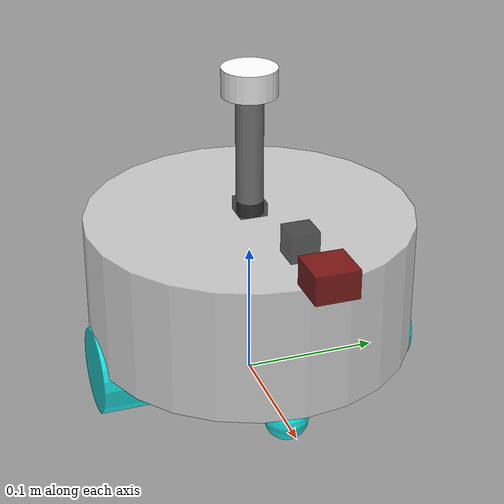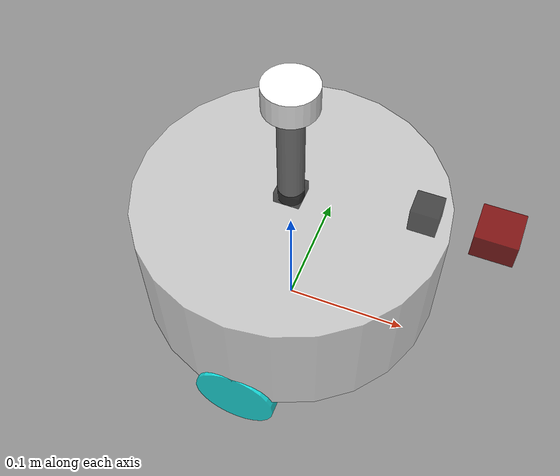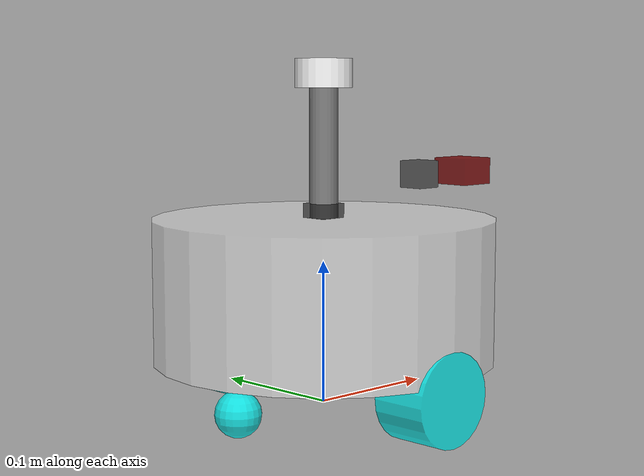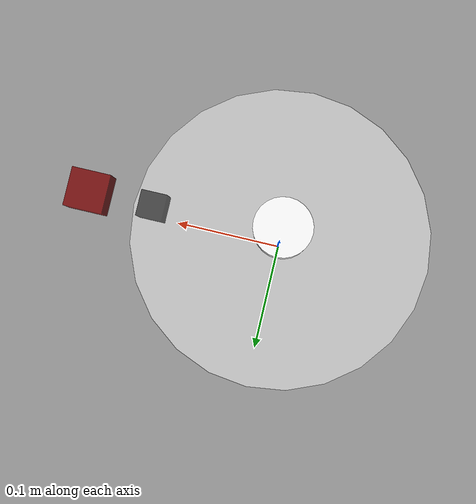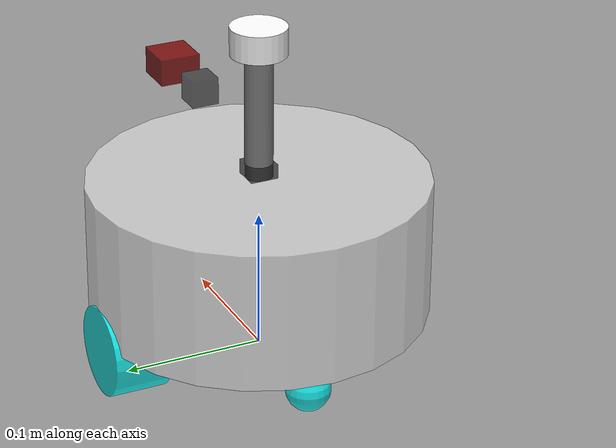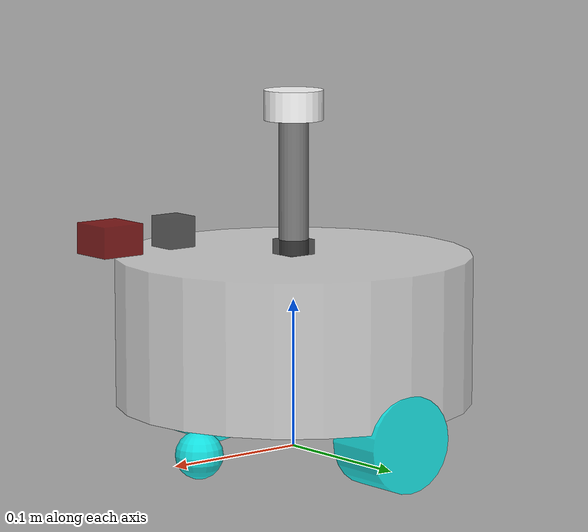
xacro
<?xml version="1.0"?>
<robot xmlns:xacro="http://www.ros.org/wiki/xacro" name="dong_robot">
<xacro:include filename="$(find first_pkg)/urdf/robot/common_inertial.xacro"/>
<!-- 机体 -->
<xacro:include filename="$(find first_pkg)/urdf/robot/base.urdf.xacro"/>
<!-- 传感器 -->
<xacro:include filename="$(find first_pkg)/urdf/robot/sensor/camera.urdf.xacro"/>
<xacro:include filename="$(find first_pkg)/urdf/robot/sensor/imu.urdf.xacro"/>
<xacro:include filename="$(find first_pkg)/urdf/robot/sensor/laser.urdf.xacro"/>
<xacro:include filename="$(find first_pkg)/urdf/robot/sensor/infrared_sensor.urdf.xacro"/>
<!-- 执行装置 -->
<xacro:include filename="$(find first_pkg)/urdf/robot/actor/wheel.urdf.xacro"/>
<xacro:include filename="$(find first_pkg)/urdf/robot/actor/caster.urdf.xacro"/>
<!-- 插件 -->
<xacro:include filename="$(find first_pkg)/urdf/robot/plugins/gazebo_control_plugin.xacro"/>
<xacro:include filename="$(find first_pkg)/urdf/robot/plugins/gazebo_sensor_plugin.xacro"/>
<xacro:include filename="$(find first_pkg)/urdf/robot/plugins/gazebo_infrared_plugin.xacro"/>

<xacro:base_xacro radius = '0.12' length = '0.1'></xacro:base_xacro>
<xacro:imu_xacro xyz="0.0 0.0 0.05" />
<xacro:camera_xacro xyz="0.1 0.0 0.075" />
<xacro:laser_xacro xyz="0.0 0.0 0.10" />
<xacro:infrared_sensor_xacro xyz="0.15 0.0 0.075" />
<xacro:wheel_xacro wheel_name = "right_wheel" xyz="0.0 0.1 -0.06" />
<xacro:wheel_xacro wheel_name = "left_wheel" xyz="0.0 -0.1 -0.06" />
<xacro:caster_xacro caster_wheel_name = "ahead_caster_wheel" xyz="0.08 0.0 -0.076" />
<xacro:caster_xacro caster_wheel_name = "behind_caster_wheel" xyz="-0.08 0.0 -0.076" />
<xacro:gazebo_control_plugin />
<xacro:gazebo_sensor_plugin />
<xacro:gazebo_infrared_plugin />

</robot>

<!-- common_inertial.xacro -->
<robot xmlns:xacro="http://ros.org/wiki/xacro">
    <xacro:macro name="inertial_box" params="mass x y z">
        <inertial>
            <origin xyz="0 0 0" rpy="0 0 0"/>
            <mass value="${mass}" />
            <inertia ixx="${(1/12) * mass * (y*y + z*z)}" ixy="0.0" ixz="0.0"
                     iyy="${(1/12) * mass * (x*x + z*z)}" iyz="0.0"
                     izz="${(1/12) * mass * (x*x + y*y)}" />
        </inertial>
    </xacro:macro>

    <!-- Macro for adding inertial properties to a cylinder -->
    <xacro:macro name="inertial_cylinder" params="mass radius length axis">
        <inertial>
            <origin xyz="0 0 0" rpy="0 0 0"/>
            <mass value="${mass}" />
            <inertia ixx="${(1/12) * mass * (3*radius*radius + length*length)}" ixy="0.0" ixz="0.0"
                     iyy="${(1/12) * mass * (3*radius*radius + length*length)}" iyz="0.0"
                     izz="${(1/2) * mass * (radius*radius)}" />
        </inertial>
    </xacro:macro>

    <!-- Macro for adding inertial properties to a sphere -->
    <xacro:macro name="inertial_sphere" params="mass radius">
        <inertial>
            <origin xyz="0 0 0" rpy="0 0 0"/>
            <mass value="${mass}" />
            <inertia ixx="${(2/5) * mass * radius * radius}" ixy="0.0" ixz="0.0"
                     iyy="${(2/5) * mass * radius * radius}" iyz="0.0"
                     izz="${(2/5) * mass * radius * radius}" />
        </inertial>
    </xacro:macro>
</robot>

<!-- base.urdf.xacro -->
<robot xmlns:xacro = 'http://www.ros.org/wiki/xacro'>
<xacro:include filename="$(find first_pkg)/urdf/robot/common_inertial.xacro"/>
    <xacro:macro name="base_xacro" params = "radius length">\
        <!-- 虚拟投影部件 -->
        <link name="base_footprint">
        </link>
        <!-- 机器人底盘 -->
        <link name="base_link">
            <visual>
                <origin xyz="0.0 0.0 0.0" rpy="0.0 0.0 0.0"/>
                <geometry>
                    <cylinder radius="${radius}" length="${length}"/>
                 </geometry>
                <material name="white">
                    <color rgba="1.0 1.0 1.0 0.5"/>
                </material>
            </visual>
            <collision>
                <origin xyz="0.0 0.0 0.0" rpy="0.0 0.0 0.0"/>
                <geometry>
                    <cylinder radius="${radius}" length="${length}"/>
                 </geometry>
                <material name="white">
                    <color rgba="1.0 1.0 1.0 0.5"/>
                </material>
            </collision>

            <xacro:inertial_cylinder mass="1.0" radius="${radius}" length="${length}" axis="z"/>

        </link>
        <joint name="joint_name" type="fixed">
            <origin xyz="0.0 0.0 ${length/2 + 0.032-0.001}" rpy="0.0 0.0 0.0"/>
            <parent link="base_footprint"/>
            <child link="base_link"/>
        </joint>
    </xacro:macro >
</robot>

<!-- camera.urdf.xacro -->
<robot xmlns:xacro = 'http://www.ros.org/wiki/xacro'>
<xacro:include filename="$(find first_pkg)/urdf/robot/common_inertial.xacro"/>
    <xacro:macro name="camera_xacro" params = "xyz">
        <link name="camera_optic_link">

        </link>
        <!-- CAMERA 模块 -->
        <link name="camera_link">
            <visual>
                <origin xyz="0.0 0.0 0.0" rpy="0.0 0.0 0.0"/>
                <geometry>
                    <box size="0.02 0.02 0.02"/>
                </geometry>
                <material name="black">
                    <color rgba="0.0 0.0 0.0 0.5"/>
                </material>
            </visual>
            <collision>
                 <origin xyz="0.0 0.0 0.0" rpy="0.0 0.0 0.0"/>
                <geometry>
                    <box size="0.02 0.02 0.02"/>
                </geometry>
                <material name="black">
                    <color rgba="0.0 0.0 0.0 0.5"/>
                </material>
            </collision>
            <xacro:inertial_box mass = "0.1" x = "0.02" y = "0.02" z = "0.02"/>
        </link>

        <!-- CAMERA连接 -->
        <joint name="camera_joint" type="fixed">
            <parent link="base_link"/>
            <child link="camera_link"/>
            <origin xyz="${xyz}" rpy="0.0 0.0 0.0"/>
        </joint>
        <joint name="camera_optic_joint" type="fixed">
            <origin xyz="0.0 0.0 0.0" rpy="${-pi/2} 0.0 ${-pi/2}"/>
            <parent link="camera_link"/>
            <child link="camera_optic_link"/>
        </joint>
    </xacro:macro>
</robot>

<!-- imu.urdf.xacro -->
<robot xmlns:xacro = 'http://www.ros.org/wiki/xacro'>
<xacro:include filename="$(find first_pkg)/urdf/robot/common_inertial.xacro"/>
    <xacro:macro name="imu_xacro" params = "xyz">
        <!-- IMU 模块 -->
        <link name="imu_link">
            <visual>
                <origin xyz="0.0 0.0 0.0" rpy="0.0 0.0 0.0"/>
                <geometry>
                    <box size="0.02 0.02 0.02"/>
                </geometry>
                <material name="black">
                    <color rgba="0.0 0.0 0.0 0.5"/>
                </material>
            </visual>
            <collision>
                <origin xyz="0.0 0.0 0.0" rpy="0.0 0.0 0.0"/>
                <geometry>
                    <box size="0.02 0.02 0.02"/>
                </geometry>
                <material name="black">
                    <color rgba="0.0 0.0 0.0 0.5"/>
                </material>
            </collision>
            <xacro:inertial_box mass = "0.05" x = "0.02" y = "0.02" z = "0.02"/>
        </link>

        <!-- imu连接 -->
        <joint name="imu_joint" type="fixed">
            <parent link="base_link"/>
            <child link="imu_link"/>
            <origin xyz="${xyz}" rpy="0.0 0.0 0.0"/>
        </joint>

    </xacro:macro>

</robot>

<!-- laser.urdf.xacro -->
<robot xmlns:xacro = 'http://www.ros.org/wiki/xacro'>
    <xacro:macro name="laser_xacro" params = "xyz">
        <!-- 激光雷达模块 -->
        <link name="laser_link">
            <visual>
                <origin xyz="0.0 0.0 0.0" rpy="0.0 0.0 0.0"/>
                <geometry>
                    <cylinder radius="0.02" length="0.02"/>
                </geometry>
                <material name="black">
                    <color rgba="1.0 1.0 1.0 1.0"/>
                </material>
            </visual>
        </link>
        <!-- 雷达支撑杆零件 -->
        <link name="laser_support_link">
            <visual>
                <!-- 雷达支撑杆位置 -->
                <origin xyz="0.0 0.0 0.0" rpy="0.0 0.0 0.0"/>
                <!-- 雷达支撑杆形状 -->
                <geometry>
                    <cylinder radius="0.01" length="0.1"/>
                </geometry>
                <!-- 雷达支撑杆材料 -->
                <material name="blue">
                    <color rgba="0.5 0.5 0.5 1.0"/>
                </material>
            </visual>
        </link>

        <!-- l雷达连接 -->
        <joint name="laser_joint" type="fixed">
            <parent link="laser_support_link"/>
            <child link="laser_link"/>
            <origin xyz="0.0 0.0 0.05" rpy="0.0 0.0 0.0"/>
        </joint>

        <!-- 雷达支撑杆连接 -->
        <joint name="laser_support_link_joint" type="fixed">
            <parent link="base_link"/>
            <child link="laser_support_link"/>
            <origin xyz="${xyz}" rpy="0.0 0.0 0.0"/>
        </joint>
        <gazebo reference = "laser_link">
            <material>Gazebo/Black</material>
        </gazebo>
        <gazebo reference = "laser_support_link">
            <material>Gazebo/Black</material>
        </gazebo>
    </xacro:macro>
</robot>

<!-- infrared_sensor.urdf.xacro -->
<robot xmlns:xacro = 'http://www.ros.org/wiki/xacro'>
<xacro:include filename="$(find first_pkg)/urdf/robot/common_inertial.xacro"/>
    <xacro:macro name="infrared_sensor_xacro" params = "xyz">
        <!-- 红外线传感器模块 -->
        <link name="infrared_sensor_link">
            <visual>
                <origin xyz="0.0 0.0 0.0" rpy="0.0 0.0 0.0"/>
                <geometry>
                    <box size="0.03 0.03 0.02"/>
                </geometry>
                <material name="dark_red">
                    <color rgba="0.5 0.0 0.0 0.8"/>
                </material>
            </visual>
            <collision>
                <origin xyz="0.0 0.0 0.0" rpy="0.0 0.0 0.0"/>
                <geometry>
                    <box size="0.03 0.03 0.02"/>
                </geometry>
            </collision>
            <xacro:inertial_box mass = "0.05" x = "0.03" y = "0.03" z = "0.02"/>
        </link>

        <!-- 红外线传感器连接 -->
        <joint name="infrared_sensor_joint" type="fixed">
            <parent link="base_link"/>
            <child link="infrared_sensor_link"/>
            <origin xyz="${xyz}" rpy="0.0 0.0 0.0"/>
        </joint>

        <!-- Gazebo插件配置 -->
        <gazebo reference="infrared_sensor_link">
            <material>Gazebo/DarkRed</material>
        </gazebo>
    </xacro:macro>
</robot>

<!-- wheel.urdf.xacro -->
<robot xmlns:xacro = 'http://www.ros.org/wiki/xacro'>
<xacro:include filename="$(find first_pkg)/urdf/robot/common_inertial.xacro"/>
    <xacro:macro name="wheel_xacro" params = "wheel_name xyz">
        <!-- 轮子模块 -->
        <link name="${wheel_name}_link">
            <visual>
                <origin xyz="0.0 0.0 0.0" rpy="1.57079 0.0 0.0"/>
                <geometry>
                    <cylinder radius="0.032" length="0.04"/>
                </geometry>
                <material name="red">
                    <color rgba="0.0 1.0 1.0 0.8"/>
                </material>
            </visual>
            <collision>
                <origin xyz="0.0 0.0 0.0" rpy="1.57079 0.0 0.0"/>
                <geometry>
                    <cylinder radius="0.032" length="0.04"/>
                </geometry>
                <material name="red">
                    <color rgba="0.0 1.0 1.0 0.8"/>
                </material>
            </collision>
            <xacro:inertial_cylinder  mass = "0.05" radius = "0.03" length = "0.04" axis = "y" />
        </link>

        <!-- 轮子连接 -->
        <joint name="${wheel_name}_joint" type="continuous">
            <parent link="base_link"/>
            <child link="${wheel_name}_link"/>
            <origin xyz="${xyz}" rpy="0.0 0.0 0.0"/>
            <axis xyz="0.0 1.0 0.0"/>
        </joint>

        <gazebo reference = "${wheel_name}_link">
            <mu1 value = "20.0" />
            <mu2 value = "20.0" />
            <kp value = "1000000000.0" />
            <kd value = "1.0" />
        </gazebo>

    </xacro:macro>
</robot>

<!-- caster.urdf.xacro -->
<robot xmlns:xacro = 'http://www.ros.org/wiki/xacro'>
<xacro:include filename="$(find first_pkg)/urdf/robot/common_inertial.xacro"/>
    <xacro:macro name="caster_xacro" params = "caster_wheel_name xyz">
        <!-- 轮子模块 -->
        <link name="${caster_wheel_name}_link">
            <visual>
                <origin xyz="0.0 0.0 0.0" rpy="0.0 0.0 0.0"/>
                <geometry>
                    <sphere radius="0.016"/>
                </geometry>
                <material name="red">
                    <color rgba="0.0 1.0 1.0 0.8"/>
                </material>
            </visual>
            <collision>
                <origin xyz="0.0 0.0 0.0" rpy="0.0 0.0 0.0"/>
                <geometry>
                    <sphere radius="0.016"/>
                </geometry>
                <material name="red">
                    <color rgba="0.0 1.0 1.0 0.8"/>
                </material>
            </collision>
            <xacro:inertial_sphere mass = "0.05" radius = "0.016" />
        </link>

        <!-- 轮子连接 -->
        <joint name="${caster_wheel_name}_joint" type="fixed">
            <parent link="base_link"/>
            <child link="${caster_wheel_name}_link"/>
            <origin xyz="${xyz}" rpy="0.0 0.0 0.0"/>

        </joint>

        <gazebo reference = "${caster_wheel_name}_link">
            <mu1 value = "0.0" />
            <mu2 value = "0.0" />
            <kp value = "1000000000.0" />
            <kd value = "1.0" />
        </gazebo>

    </xacro:macro>
</robot>
